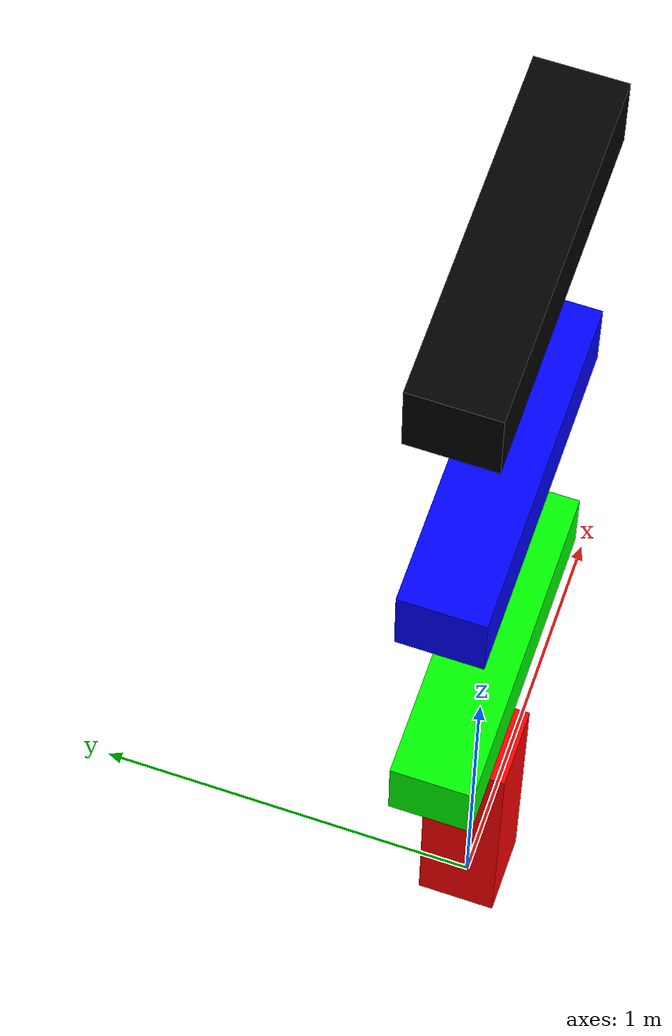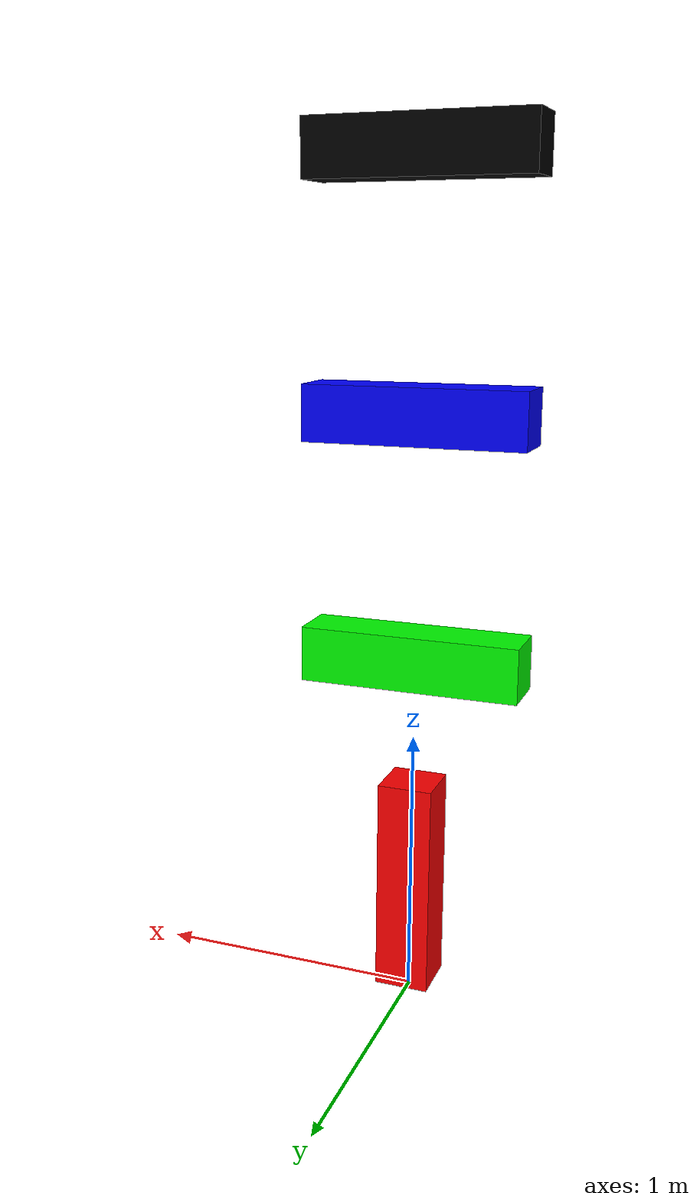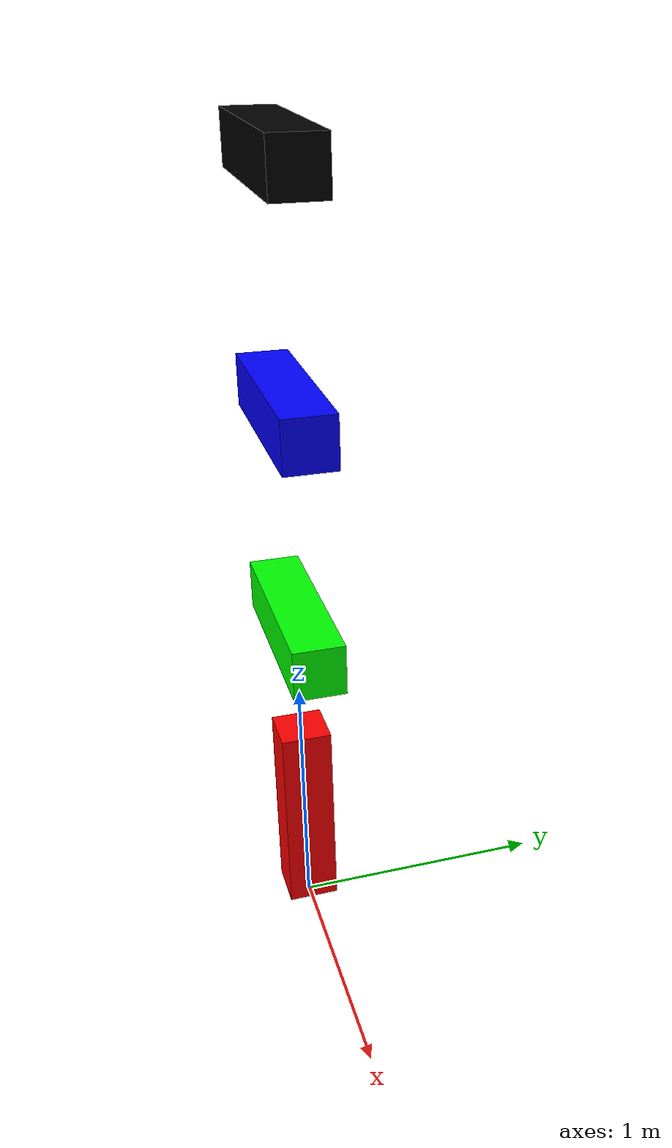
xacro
<?xml version="1.0" encoding="utf-8"?>

<robot name="robot_scara" xmlns:xacro="http://ros.org/wiki/xacro">

	<link name="world"/>

	<joint name="world_joint" type="fixed">
		<parent link="world" />
		<child link="base_link" />
		<origin xyz="0.0 0.0 0.0" rpy="0.0 0.0 0.0" />
	</joint>

	<link name="base_link">
		<visual>
			<origin xyz="0.0 0.0 0.4353" rpy="0.0 0.0 0.0"/>

			<geometry>
				<box size="0.2 0.2 0.8"/>
			</geometry>

			<material name="red">
				<color rgba="1.0 0.0 0.0 1.0"/>
			</material>
		</visual>

		<collision>
			<origin xyz="0.0 0.0 0.4353" rpy="0.0 0.0 0.0"/>

			<geometry>
				<box size="0.2 0.2 0.8"/>
			</geometry>
		</collision>

		<inertial>
			<mass value="1.0"/>

			<origin xyz="0.0 0.0 0.0" rpy="0.0 0.0 0.0"/>

			<inertia ixx="1.0" ixy="0.0" ixz="0.0"
				iyy="1.0" iyz="0.0" izz="1.0"/>
		</inertial>
	</link>

	<link name="link_1">
		<visual>
			<origin xyz="0.0 0.0 0.4353" rpy="0.0 0.0 0.0"/>

			<geometry>
				<box size="0.8 0.2 0.2"/>
			</geometry>

			<material name="green">
				<color rgba="0.0 1.0 0.0 1.0"/>
			</material>
		</visual>

		<collision>
			<origin xyz="0.0 0.0 0.4353" rpy="0.0 0.0 0.0"/>

			<geometry>
				<box size="0.2 0.2 0.8"/>
			</geometry>
		</collision>

		<inertial>
			<mass value="1.0"/>

			<origin xyz="0.0 0.0 0.0" rpy="0.0 0.0 0.0"/>

			<inertia ixx="1.0" ixy="0.0" ixz="0.0"
				iyy="1.0" iyz="0.0" izz="1.0"/>
		</inertial>
	</link>

	<joint name="link1_joint" type="revolute" >
		<parent link="base_link" />
		<child link="link_1" />
		<axis xyz="0.0 0.0 1.0" />
		<limit lower="-0.78" upper="0.78" velocity="30"
			effort="10" />
		<origin xyz="0.0 0.0 0.8706" rpy="0.0 0.0 0.0" />
	</joint>

	<link name="link_2">
		<visual>
			<origin xyz="0.0 0.0 0.4353" rpy="0.0 0.0 0.0"/>

			<geometry>
				<box size="0.8 0.2 0.2"/>
			</geometry>

			<material name="blue">
				<color rgba="0.0 0.0 1.0 1.0"/>
			</material>
		</visual>

		<collision>
			<origin xyz="0.0 0.0 0.4353" rpy="0.0 0.0 0.0"/>

			<geometry>
				<box size="0.2 0.2 0.8"/>
			</geometry>
		</collision>

		<inertial>
			<mass value="1.0"/>

			<origin xyz="0.0 0.0 0.0" rpy="0.0 0.0 0.0"/>

			<inertia ixx="1.0" ixy="0.0" ixz="0.0"
				iyy="1.0" iyz="0.0" izz="1.0"/>
		</inertial>
	</link>

	<joint name="link2_joint" type="revolute" >
		<parent link="link_1" />
		<child link="link_2" />
		<axis xyz="0.0 1.0 0.0" />
		<limit lower="-0.78" upper="0.78" velocity="30"
			effort="10" />
		<origin xyz="0.0 0.0 0.8706" rpy="0.0 0.0 0.0" />
	</joint>

	<link name="link_3">
		<visual>
			<origin xyz="0.0 0.0 0.4353" rpy="0.0 0.0 0.0"/>

			<geometry>
				<box size="0.8 0.2 0.2"/>
			</geometry>

			<material name="black">
				<color rgba="0.0 0.0 0.0 1.0"/>
			</material>
		</visual>

		<collision>
			<origin xyz="0.0 0.0 0.4353" rpy="0.0 0.0 0.0"/>

			<geometry>
				<box size="0.2 0.2 0.8"/>
			</geometry>
		</collision>

		<inertial>
			<mass value="1.0"/>

			<origin xyz="0.0 0.0 0.0" rpy="0.0 0.0 0.0"/>

			<inertia ixx="1.0" ixy="0.0" ixz="0.0"
				iyy="1.0" iyz="0.0" izz="1.0"/>
		</inertial>
	</link>

	<joint name="link3_joint" type="revolute" >
		<parent link="link_2" />
		<child link="link_3" />
		<axis xyz="0.0 1.0 0.0" />
		<limit lower="-0.78" upper="0.78" velocity="30"
			effort="10" />
		<origin xyz="0.0 0.0 0.8706" rpy="0.0 0.0 0.0" />
	</joint>

	<link name="P"/>

	<joint name="link_P_joint" type="fixed" >
		<parent link="link_3" />
		<child link="P" />
		<origin xyz="0.25 0.0 0.0" rpy="0.0 0.0 0.0" />
	</joint>
</robot>
